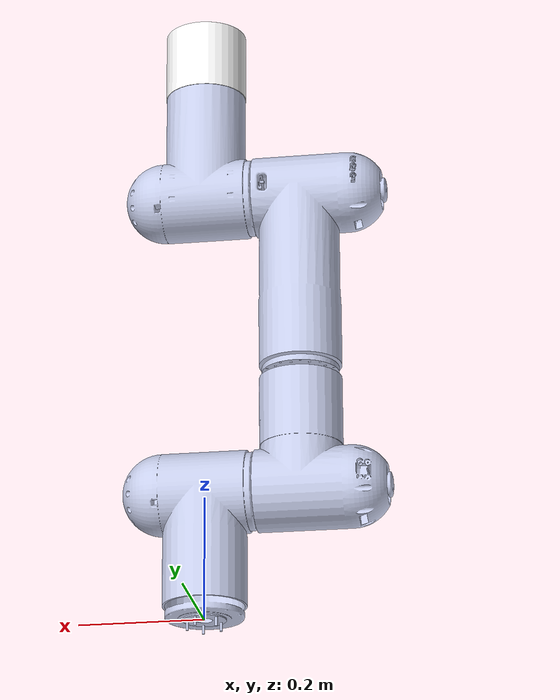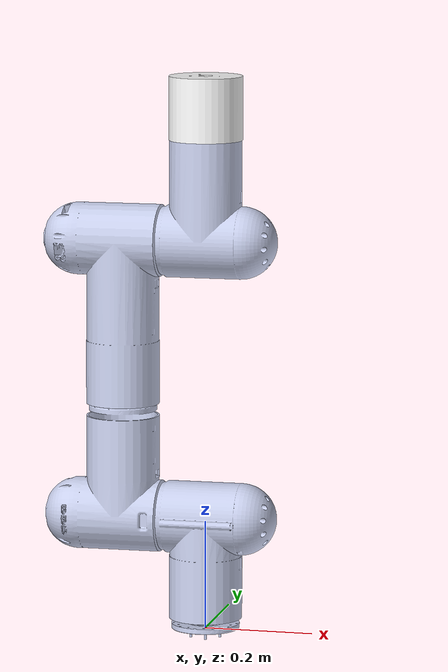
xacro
<?xml version="1.0" encoding="UTF-8"?>
<robot name="mg_limb_4dof" xmlns:xacro="http://www.ros.org/wiki/xacro">

  <xacro:property name="ThisPackage" value="urdf_packer"></xacro:property>
  <xacro:property name="Filename" value="mg_limb_4dof"></xacro:property>
  <xacro:property name="UrdfDataPath" value="package://${ThisPackage}/urdf/${Filename}"></xacro:property>
  <xacro:property name="MeshPath" value="package://${ThisPackage}/meshes/${Filename}"></xacro:property>

  <link name="base_link">
    <inertial>
      <origin rpy="0 0 0" xyz="-6.32702240353629E-08 -7.45234971540242E-08 0.00277450409037011"></origin>
      <mass value="0.0239385159475204"></mass>
      <inertia ixx="7.90024876786918E-06" ixy="-2.25571527007123E-11" ixz="1.07174398977376E-11" iyy="7.90024552384554E-06" iyz="1.2249303307814E-11" izz="1.53938321724266E-05"></inertia>
    </inertial>
    <visual>
      <origin rpy="0 0 0" xyz="0 0 0"></origin>
      <geometry>
        <mesh filename="${MeshPath}/eef1_link.STL"></mesh>
      </geometry>
      <material name="">
        <color rgba="0.792156862745098 0.819607843137255 0.933333333333333 1"></color>
      </material>
    </visual>
    <collision>
      <origin rpy="0 0 0" xyz="0 0 0"></origin>
      <geometry>
        <mesh filename="${MeshPath}/eef1_link.STL"></mesh>
      </geometry>
    </collision>
  </link>
  <link name="link1">
    <inertial>
      <origin rpy="0 0 0" xyz="0.0285672301339123 -0.000366343505554881 0.164586028597064"></origin>
      <mass value="1.14707763162049"></mass>
      <inertia ixx="0.00466122883321823" ixy="-4.86701441683876E-06" ixz="-0.00026511894805086" iyy="0.00406432511720851" iyz="1.0731532031594E-05" izz="0.00310046817291436"></inertia>
    </inertial>
    <visual>
      <origin rpy="0 0 0" xyz="0 0 0"></origin>
      <geometry>
      <mesh filename="${MeshPath}/link1.STL"></mesh>
      </geometry>
      <material name="">
        <color rgba="0.792156862745098 0.819607843137255 0.933333333333333 1"></color>
      </material>
    </visual>
    <collision>
      <origin rpy="0 0 0" xyz="0 0 0"></origin>
      <geometry>
        <mesh filename="${MeshPath}/link1.STL"></mesh>
      </geometry>
    </collision>
  </link>
  <joint name="joint1" type="revolute">
    <origin rpy="0 0 0" xyz="0 0 0"></origin>
    <parent link="base_link"></parent>
    <child link="link1"></child>
    <axis xyz="0 0 -1"></axis>
    <limit effort="10.0" lower="-3.14159265358979" upper="3.14159265358979" velocity="10.0"></limit>
  </joint>
  <link name="link2">
    <inertial>
      <origin rpy="0 0 0" xyz="-0.0334732916129275 0.00204666366161849 -0.0892977524194901"></origin>
      <mass value="1.44966543806477"></mass>
      <inertia ixx="0.00449231081823489" ixy="-0.000103296473438572" ixz="-0.00012484349658756" iyy="0.00614737212859449" iyz="7.97206026823848E-06" izz="0.00652980679345959"></inertia>
    </inertial>
    <visual>
      <origin rpy="0 0 0" xyz="0 0 0"></origin>
      <geometry>
        <mesh filename="${MeshPath}/link2.STL"></mesh>
      </geometry>
      <material name="">
        <color rgba="0.792156862745098 0.819607843137255 0.933333333333333 1"></color>
      </material>
    </visual>
    <collision>
      <origin rpy="0 0 0" xyz="0 0 0"></origin>
      <geometry>
        <mesh filename="${MeshPath}/link2.STL"></mesh>
      </geometry>
    </collision>
  </link>
  <joint name="joint2" type="revolute">
    <origin rpy="0 1.5707963267949 0" xyz="-0.0825000000000035 0 0.207099999999996"></origin>
    <parent link="link1"></parent>
    <child link="link2"></child>
    <axis xyz="0 0 -1"></axis>
    <limit effort="10.0" lower="-3.14159265358979" upper="3.14159265358979" velocity="10.0"></limit>
  </joint>
  <link name="link3">
    <inertial>
      <origin rpy="0 0 0" xyz="0.00769647295275289 0.00191505338790561 0.172198455769819"></origin>
      <mass value="3.10370671744126"></mass>
      <inertia ixx="0.0149380739622292" ixy="-2.96038534846583E-05" ixz="0.000314341638704582" iyy="0.0146542323118176" iyz="-0.000473825175379418" izz="0.00929241067367723"></inertia>
    </inertial>
    <visual>
      <origin rpy="0 0 0" xyz="0 0 0"></origin>
      <geometry>
        <mesh filename="${MeshPath}/link3.STL"></mesh>
      </geometry>
      <material name="">
        <color rgba="0.792156862745098 0.819607843137255 0.933333333333333 1"></color>
      </material>
    </visual>
    <collision>
      <origin rpy="0 0 0" xyz="0 0 0"></origin>
      <geometry>
        <mesh filename="${MeshPath}/link3.STL"></mesh>
      </geometry>
    </collision>
  </link>
  <joint name="joint3" type="revolute">
    <origin rpy="3.14159265358979 1.5707963267949 0" xyz="-0.207100000000004 0 -0.0725999999999924"></origin>
    <parent link="link2"></parent>
    <child link="link3"></child>
    <axis xyz="0 0 1"></axis>
    <limit effort="10.0" lower="-3.14159265358979" upper="3.14159265358979" velocity="10.0"></limit>
  </joint>
  <link name="link4">
    <inertial>
      <origin rpy="0 0 0" xyz="-0.0699071069442022 -0.000127322361395695 0.101848050831432"></origin>
      <mass value="1.69580215708747"></mass>
      <inertia ixx="0.004771676335146" ixy="-6.64219834590732E-06" ixz="-0.00049024765824555" iyy="0.00769631542114103" iyz="-4.4614000358848E-06" izz="0.00817084465324831"></inertia>
    </inertial>
    <visual>
      <origin rpy="0 0 0" xyz="0 0 0"></origin>
      <geometry>
        <mesh filename="${MeshPath}/link4.STL"></mesh>
      </geometry>
      <material name="">
        <color rgba="0.792156862745098 0.819607843137255 0.933333333333333 1"></color>
      </material>
    </visual>
    <collision>
      <origin rpy="0 0 0" xyz="0 0 0"></origin>
      <geometry>
        <mesh filename="${MeshPath}/link4.STL"></mesh>
      </geometry>
    </collision>
  </link>
  <joint name="joint4" type="revolute">
    <origin rpy="3.14159265358979 1.5707963267949 0" xyz="-0.0726000000000013 0 0.302600000000001"></origin>
    <parent link="link3"></parent>
    <child link="link4"></child>
    <axis xyz="0 0 -1"></axis>
    <limit effort="10.0" lower="-3.14159265358979" upper="3.14159265358979" velocity="10.0"></limit>
  </joint>
  <link name="EndEff">
    <inertial>
      <origin rpy="0 0 0" xyz="9.38389896196718E-19 2.80895307050019E-19 0.0520505903469446"></origin>
      <mass value="1.12222465090096"></mass>
      <inertia ixx="0.00289504434830875" ixy="3.39975378002115E-19" ixz="1.7079151286922E-21" iyy="0.00289504434830875" iyz="-8.64164153229198E-20" izz="0.00327149822638556"></inertia>
    </inertial>
    <visual>
      <origin rpy="0 0 0" xyz="0 0 0"></origin>
      <geometry>
        <mesh filename="${MeshPath}/eef2_link.STL"></mesh>
      </geometry>
      <material name="">
        <color rgba="1 1 1 1"></color>
      </material>
    </visual>
    <collision>
      <origin rpy="0 0 0" xyz="0 0 0"></origin>
      <geometry>
        <mesh filename="${MeshPath}/eef2_link.STL"></mesh>
      </geometry>
    </collision>
  </link>
  <joint name="EEfixed" type="fixed">
    <origin rpy="0 1.5707963267949 0" xyz="-0.299099999999999 0 0.0824999999999915"></origin>
    <parent link="link4"></parent>
    <child link="EndEff"></child>
    <axis xyz="0 0 0"></axis>
    <limit effort="10" lower="-3.141592" upper="3.141592" velocity="10"></limit>
  </joint>
</robot>
